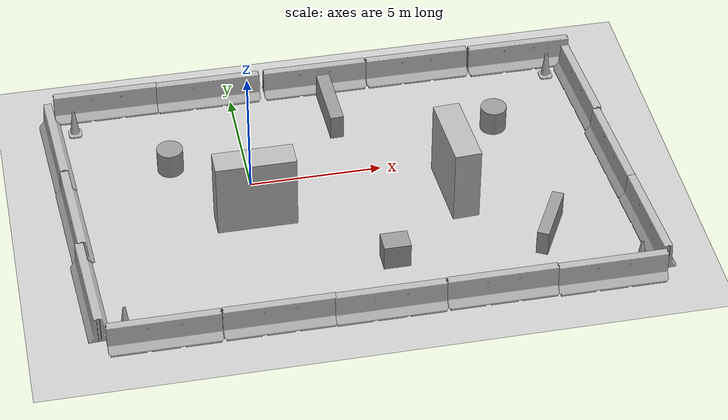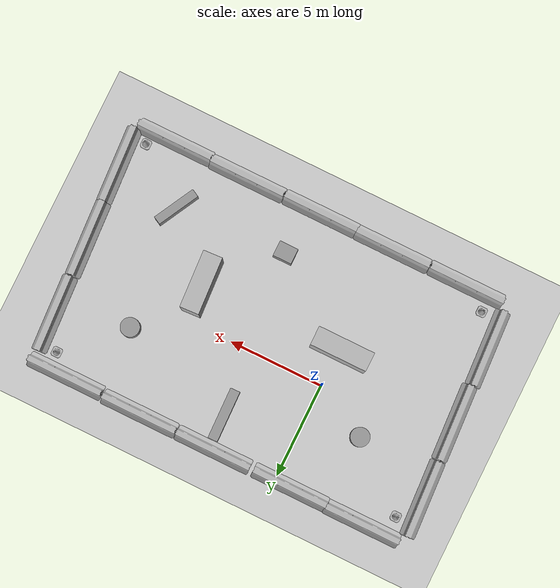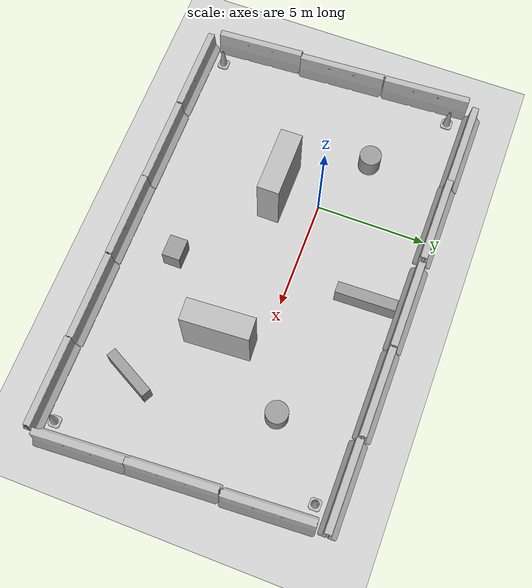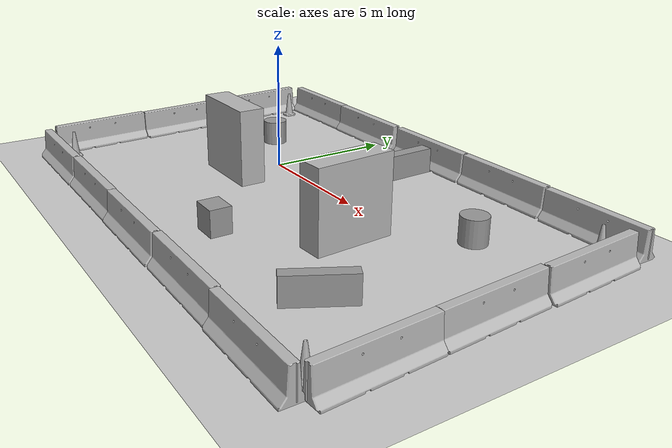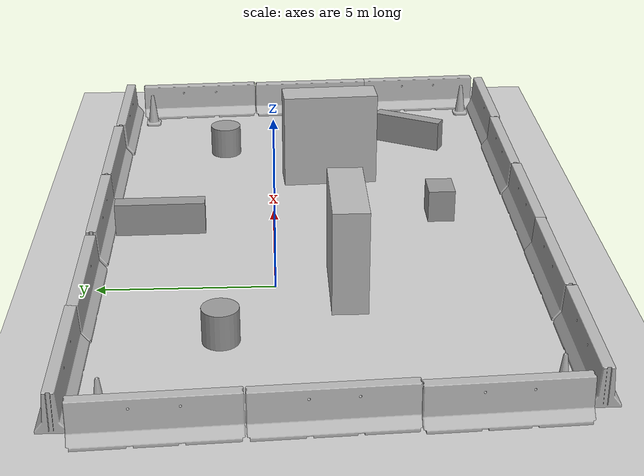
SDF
<sdf version="1.6">
 <world name="default">
  <light name="sun" type="directional">
   <pose>0 0 10 0 -0 0</pose>
   <diffuse>0.8 0.8 0.8 1</diffuse>
   <specular>0.2 0.2 0.2 1</specular>
   <attenuation>
    <range>1000</range>
    <constant>0.9</constant>
    <linear>0.01</linear>
    <quadratic>0.001</quadratic>
   </attenuation>
   <direction>-0.5 0.1 -0.9</direction>
  </light>
  <model name="ground_plane">
   <static>1</static>
   <link name="link">
    <collision name="collision">
     <geometry><plane><normal>0 0 1</normal><size>100 100</size></plane></geometry>
     <surface>
      <contact><collide_bitmask>65535</collide_bitmask></contact>
      <friction><ode><mu>100</mu><mu2>50</mu2></ode></friction>
     </surface>
    </collision>
    <visual name="visual">
     <cast_shadows>0</cast_shadows>
     <geometry><plane><normal>0 0 1</normal><size>100 100</size></plane></geometry>
     <material>
      <script><uri>file://media/materials/scripts/gazebo.material</uri><name>Gazebo/Grey</name></script>
     </material>
    </visual>
   </link>
  </model>
  <gravity>0 0 -9.8</gravity>
  <magnetic_field>6e-06 2.3e-05 -4.2e-05</magnetic_field>
  <atmosphere type="adiabatic"/>
  <physics name="default_physics" default="0" type="ode">
   <max_step_size>0.001</max_step_size>
   <real_time_factor>1</real_time_factor>
   <real_time_update_rate>1000</real_time_update_rate>
  </physics>
  <scene><ambient>0.4 0.4 0.4 1</ambient><background>0.7 0.7 0.7 1</background><shadows>1</shadows></scene>
  <audio><device>default</device></audio>
  <spherical_coordinates>
   <surface_model>EARTH_WGS84</surface_model>
   <latitude_deg>0</latitude_deg>
   <longitude_deg>0</longitude_deg>
   <elevation>0</elevation>
   <heading_deg>0</heading_deg>
  </spherical_coordinates>
  <model name="brick_box_3x1x3">
   <static>1</static>
   <link name="chassis">
    <pose>0 0 1.5 0 -0 0</pose>
    <collision name="collision"><geometry><box><size>3 1 3</size></box></geometry></collision>
    <visual name="visual">
     <geometry><mesh><uri>model://brick_box_3x1x3/meshes/simple_box.dae</uri><scale>3 1 3</scale></mesh></geometry>
     <material>
      <script>
       <uri>model://brick_box_3x1x3/materials/scripts</uri>
       <uri>model://brick_box_3x1x3/materials/textures</uri>
       <name>BrickBox/Diffuse</name>
      </script>
     </material>
    </visual>
   </link>
   <pose>-0.123615 -1.97422 0 0 -0 0</pose>
  </model>
  <model name="jersey_barrier">
   <static>1</static>
   <link name="link">
    <visual name="visual">
     <geometry><mesh><uri>model://jersey_barrier/meshes/jersey_barrier.dae</uri></mesh></geometry>
    </visual>
    <collision name="upright">
     <pose>0 0 0.5715 0 -0 0</pose>
     <geometry><box><size>4.06542 0.3063 1.143</size></box></geometry>
    </collision>
    <collision name="base">
     <pose>0 0 0.032258 0 -0 0</pose>
     <geometry><box><size>4.06542 0.8107 0.064516</size></box></geometry>
    </collision>
    <collision name="base2">
     <pose>0 0 0.1 0 -0 0</pose>
     <geometry><box><size>4.06542 0.65 0.1</size></box></geometry>
    </collision>
    <collision name="base3">
     <pose>0 0 0.2 0 -0 0</pose>
     <geometry><box><size>4.06542 0.5 0.1</size></box></geometry>
    </collision>
    <collision name="left-angle">
     <pose>0 -0.224 0.2401 0.9 -0 0</pose>
     <geometry><box><size>4.06542 0.5 0.064516</size></box></geometry>
    </collision>
    <collision name="right-angle">
     <pose>0 0.224 0.2401 -0.9 0 0</pose>
     <geometry><box><size>4.06542 0.5 0.064516</size></box></geometry>
    </collision>
   </link>
   <pose>-0.207095 -7.71472 0.004718 0 -0 0</pose>
  </model>
  <model name="jersey_barrier_clone">
   <static>1</static>
   <link name="link">
    <visual name="visual">
     <geometry><mesh><uri>model://jersey_barrier/meshes/jersey_barrier.dae</uri></mesh></geometry>
    </visual>
    <collision name="upright">
     <pose>0 0 0.5715 0 -0 0</pose>
     <geometry><box><size>4.06542 0.3063 1.143</size></box></geometry>
    </collision>
    <collision name="base">
     <pose>0 0 0.032258 0 -0 0</pose>
     <geometry><box><size>4.06542 0.8107 0.064516</size></box></geometry>
    </collision>
    <collision name="base2">
     <pose>0 0 0.1 0 -0 0</pose>
     <geometry><box><size>4.06542 0.65 0.1</size></box></geometry>
    </collision>
    <collision name="base3">
     <pose>0 0 0.2 0 -0 0</pose>
     <geometry><box><size>4.06542 0.5 0.1</size></box></geometry>
    </collision>
    <collision name="left-angle">
     <pose>0 -0.224 0.2401 0.9 -0 0</pose>
     <geometry><box><size>4.06542 0.5 0.064516</size></box></geometry>
    </collision>
    <collision name="right-angle">
     <pose>0 0.224 0.2401 -0.9 0 0</pose>
     <geometry><box><size>4.06542 0.5 0.064516</size></box></geometry>
    </collision>
   </link>
   <pose>3.77569 -7.73305 0 0 -0 0</pose>
  </model>
  <model name="jersey_barrier_clone_clone">
   <static>1</static>
   <link name="link">
    <visual name="visual">
     <geometry><mesh><uri>model://jersey_barrier/meshes/jersey_barrier.dae</uri></mesh></geometry>
    </visual>
    <collision name="upright">
     <pose>0 0 0.5715 0 -0 0</pose>
     <geometry><box><size>4.06542 0.3063 1.143</size></box></geometry>
    </collision>
    <collision name="base">
     <pose>0 0 0.032258 0 -0 0</pose>
     <geometry><box><size>4.06542 0.8107 0.064516</size></box></geometry>
    </collision>
    <collision name="base2">
     <pose>0 0 0.1 0 -0 0</pose>
     <geometry><box><size>4.06542 0.65 0.1</size></box></geometry>
    </collision>
    <collision name="base3">
     <pose>0 0 0.2 0 -0 0</pose>
     <geometry><box><size>4.06542 0.5 0.1</size></box></geometry>
    </collision>
    <collision name="left-angle">
     <pose>0 -0.224 0.2401 0.9 -0 0</pose>
     <geometry><box><size>4.06542 0.5 0.064516</size></box></geometry>
    </collision>
    <collision name="right-angle">
     <pose>0 0.224 0.2401 -0.9 0 0</pose>
     <geometry><box><size>4.06542 0.5 0.064516</size></box></geometry>
    </collision>
   </link>
   <pose>7.86067 -7.70894 0 0 -0 0</pose>
  </model>
  <model name="jersey_barrier_clone_clone_clone">
   <static>1</static>
   <link name="link">
    <visual name="visual">
     <geometry><mesh><uri>model://jersey_barrier/meshes/jersey_barrier.dae</uri></mesh></geometry>
    </visual>
    <collision name="upright">
     <pose>0 0 0.5715 0 -0 0</pose>
     <geometry><box><size>4.06542 0.3063 1.143</size></box></geometry>
    </collision>
    <collision name="base">
     <pose>0 0 0.032258 0 -0 0</pose>
     <geometry><box><size>4.06542 0.8107 0.064516</size></box></geometry>
    </collision>
    <collision name="base2">
     <pose>0 0 0.1 0 -0 0</pose>
     <geometry><box><size>4.06542 0.65 0.1</size></box></geometry>
    </collision>
    <collision name="base3">
     <pose>0 0 0.2 0 -0 0</pose>
     <geometry><box><size>4.06542 0.5 0.1</size></box></geometry>
    </collision>
    <collision name="left-angle">
     <pose>0 -0.224 0.2401 0.9 -0 0</pose>
     <geometry><box><size>4.06542 0.5 0.064516</size></box></geometry>
    </collision>
    <collision name="right-angle">
     <pose>0 0.224 0.2401 -0.9 0 0</pose>
     <geometry><box><size>4.06542 0.5 0.064516</size></box></geometry>
    </collision>
   </link>
   <pose>11.9086 -7.75755 0 0 -0 0</pose>
  </model>
  <model name="jersey_barrier_clone_clone_clone_clone">
   <static>1</static>
   <link name="link">
    <visual name="visual">
     <geometry><mesh><uri>model://jersey_barrier/meshes/jersey_barrier.dae</uri></mesh></geometry>
    </visual>
    <collision name="upright">
     <pose>0 0 0.5715 0 -0 0</pose>
     <geometry><box><size>4.06542 0.3063 1.143</size></box></geometry>
    </collision>
    <collision name="base">
     <pose>0 0 0.032258 0 -0 0</pose>
     <geometry><box><size>4.06542 0.8107 0.064516</size></box></geometry>
    </collision>
    <collision name="base2">
     <pose>0 0 0.1 0 -0 0</pose>
     <geometry><box><size>4.06542 0.65 0.1</size></box></geometry>
    </collision>
    <collision name="base3">
     <pose>0 0 0.2 0 -0 0</pose>
     <geometry><box><size>4.06542 0.5 0.1</size></box></geometry>
    </collision>
    <collision name="left-angle">
     <pose>0 -0.224 0.2401 0.9 -0 0</pose>
     <geometry><box><size>4.06542 0.5 0.064516</size></box></geometry>
    </collision>
    <collision name="right-angle">
     <pose>0 0.224 0.2401 -0.9 0 0</pose>
     <geometry><box><size>4.06542 0.5 0.064516</size></box></geometry>
    </collision>
   </link>
   <pose>13.9289 -5.46955 0 0 0 -1.51331</pose>
  </model>
  <model name="jersey_barrier_clone_clone_clone_clone_clone">
   <static>1</static>
   <link name="link">
    <visual name="visual">
     <geometry><mesh><uri>model://jersey_barrier/meshes/jersey_barrier.dae</uri></mesh></geometry>
    </visual>
    <collision name="upright">
     <pose>0 0 0.5715 0 -0 0</pose>
     <geometry><box><size>4.06542 0.3063 1.143</size></box></geometry>
    </collision>
    <collision name="base">
     <pose>0 0 0.032258 0 -0 0</pose>
     <geometry><box><size>4.06542 0.8107 0.064516</size></box></geometry>
    </collision>
    <collision name="base2">
     <pose>0 0 0.1 0 -0 0</pose>
     <geometry><box><size>4.06542 0.65 0.1</size></box></geometry>
    </collision>
    <collision name="base3">
     <pose>0 0 0.2 0 -0 0</pose>
     <geometry><box><size>4.06542 0.5 0.1</size></box></geometry>
    </collision>
    <collision name="left-angle">
     <pose>0 -0.224 0.2401 0.9 -0 0</pose>
     <geometry><box><size>4.06542 0.5 0.064516</size></box></geometry>
    </collision>
    <collision name="right-angle">
     <pose>0 0.224 0.2401 -0.9 0 0</pose>
     <geometry><box><size>4.06542 0.5 0.064516</size></box></geometry>
    </collision>
   </link>
   <pose>13.6912 -1.46129 0 0 0 -1.51331</pose>
  </model>
  <model name="jersey_barrier_clone_clone_clone_clone_clone_clone">
   <static>1</static>
   <link name="link">
    <visual name="visual">
     <geometry><mesh><uri>model://jersey_barrier/meshes/jersey_barrier.dae</uri></mesh></geometry>
    </visual>
    <collision name="upright">
     <pose>0 0 0.5715 0 -0 0</pose>
     <geometry><box><size>4.06542 0.3063 1.143</size></box></geometry>
    </collision>
    <collision name="base">
     <pose>0 0 0.032258 0 -0 0</pose>
     <geometry><box><size>4.06542 0.8107 0.064516</size></box></geometry>
    </collision>
    <collision name="base2">
     <pose>0 0 0.1 0 -0 0</pose>
     <geometry><box><size>4.06542 0.65 0.1</size></box></geometry>
    </collision>
    <collision name="base3">
     <pose>0 0 0.2 0 -0 0</pose>
     <geometry><box><size>4.06542 0.5 0.1</size></box></geometry>
    </collision>
    <collision name="left-angle">
     <pose>0 -0.224 0.2401 0.9 -0 0</pose>
     <geometry><box><size>4.06542 0.5 0.064516</size></box></geometry>
    </collision>
    <collision name="right-angle">
     <pose>0 0.224 0.2401 -0.9 0 0</pose>
     <geometry><box><size>4.06542 0.5 0.064516</size></box></geometry>
    </collision>
   </link>
   <pose>13.524 2.63307 0 0 0 -1.51331</pose>
  </model>
  <model name="jersey_barrier_clone_clone_clone_clone_0">
   <static>1</static>
   <link name="link">
    <visual name="visual">
     <geometry><mesh><uri>model://jersey_barrier/meshes/jersey_barrier.dae</uri></mesh></geometry>
    </visual>
    <collision name="upright">
     <pose>0 0 0.5715 0 -0 0</pose>
     <geometry><box><size>4.06542 0.3063 1.143</size></box></geometry>
    </collision>
    <collision name="base">
     <pose>0 0 0.032258 0 -0 0</pose>
     <geometry><box><size>4.06542 0.8107 0.064516</size></box></geometry>
    </collision>
    <collision name="base2">
     <pose>0 0 0.1 0 -0 0</pose>
     <geometry><box><size>4.06542 0.65 0.1</size></box></geometry>
    </collision>
    <collision name="base3">
     <pose>0 0 0.2 0 -0 0</pose>
     <geometry><box><size>4.06542 0.5 0.1</size></box></geometry>
    </collision>
    <collision name="left-angle">
     <pose>0 -0.224 0.2401 0.9 -0 0</pose>
     <geometry><box><size>4.06542 0.5 0.064516</size></box></geometry>
    </collision>
    <collision name="right-angle">
     <pose>0 0.224 0.2401 -0.9 0 0</pose>
     <geometry><box><size>4.06542 0.5 0.064516</size></box></geometry>
    </collision>
   </link>
   <pose>11.6318 5.16035 0 0 -0 0</pose>
  </model>
  <model name="jersey_barrier_clone_clone_clone_clone_0_clone">
   <static>1</static>
   <link name="link">
    <visual name="visual">
     <geometry><mesh><uri>model://jersey_barrier/meshes/jersey_barrier.dae</uri></mesh></geometry>
    </visual>
    <collision name="upright">
     <pose>0 0 0.5715 0 -0 0</pose>
     <geometry><box><size>4.06542 0.3063 1.143</size></box></geometry>
    </collision>
    <collision name="base">
     <pose>0 0 0.032258 0 -0 0</pose>
     <geometry><box><size>4.06542 0.8107 0.064516</size></box></geometry>
    </collision>
    <collision name="base2">
     <pose>0 0 0.1 0 -0 0</pose>
     <geometry><box><size>4.06542 0.65 0.1</size></box></geometry>
    </collision>
    <collision name="base3">
     <pose>0 0 0.2 0 -0 0</pose>
     <geometry><box><size>4.06542 0.5 0.1</size></box></geometry>
    </collision>
    <collision name="left-angle">
     <pose>0 -0.224 0.2401 0.9 -0 0</pose>
     <geometry><box><size>4.06542 0.5 0.064516</size></box></geometry>
    </collision>
    <collision name="right-angle">
     <pose>0 0.224 0.2401 -0.9 0 0</pose>
     <geometry><box><size>4.06542 0.5 0.064516</size></box></geometry>
    </collision>
   </link>
   <pose>7.49854 5.21936 0 0 -0 0</pose>
  </model>
  <model name="jersey_barrier_clone_clone_clone_clone_0_clone_clone">
   <static>1</static>
   <link name="link">
    <visual name="visual">
     <geometry><mesh><uri>model://jersey_barrier/meshes/jersey_barrier.dae</uri></mesh></geometry>
    </visual>
    <collision name="upright">
     <pose>0 0 0.5715 0 -0 0</pose>
     <geometry><box><size>4.06542 0.3063 1.143</size></box></geometry>
    </collision>
    <collision name="base">
     <pose>0 0 0.032258 0 -0 0</pose>
     <geometry><box><size>4.06542 0.8107 0.064516</size></box></geometry>
    </collision>
    <collision name="base2">
     <pose>0 0 0.1 0 -0 0</pose>
     <geometry><box><size>4.06542 0.65 0.1</size></box></geometry>
    </collision>
    <collision name="base3">
     <pose>0 0 0.2 0 -0 0</pose>
     <geometry><box><size>4.06542 0.5 0.1</size></box></geometry>
    </collision>
    <collision name="left-angle">
     <pose>0 -0.224 0.2401 0.9 -0 0</pose>
     <geometry><box><size>4.06542 0.5 0.064516</size></box></geometry>
    </collision>
    <collision name="right-angle">
     <pose>0 0.224 0.2401 -0.9 0 0</pose>
     <geometry><box><size>4.06542 0.5 0.064516</size></box></geometry>
    </collision>
   </link>
   <pose>3.40367 5.22414 0 0 -0 0</pose>
  </model>
  <model name="jersey_barrier_clone_clone_clone_clone_0_clone_clone_clone">
   <static>1</static>
   <link name="link">
    <visual name="visual">
     <geometry><mesh><uri>model://jersey_barrier/meshes/jersey_barrier.dae</uri></mesh></geometry>
    </visual>
    <collision name="upright">
     <pose>0 0 0.5715 0 -0 0</pose>
     <geometry><box><size>4.06542 0.3063 1.143</size></box></geometry>
    </collision>
    <collision name="base">
     <pose>0 0 0.032258 0 -0 0</pose>
     <geometry><box><size>4.06542 0.8107 0.064516</size></box></geometry>
    </collision>
    <collision name="base2">
     <pose>0 0 0.1 0 -0 0</pose>
     <geometry><box><size>4.06542 0.65 0.1</size></box></geometry>
    </collision>
    <collision name="base3">
     <pose>0 0 0.2 0 -0 0</pose>
     <geometry><box><size>4.06542 0.5 0.1</size></box></geometry>
    </collision>
    <collision name="left-angle">
     <pose>0 -0.224 0.2401 0.9 -0 0</pose>
     <geometry><box><size>4.06542 0.5 0.064516</size></box></geometry>
    </collision>
    <collision name="right-angle">
     <pose>0 0.224 0.2401 -0.9 0 0</pose>
     <geometry><box><size>4.06542 0.5 0.064516</size></box></geometry>
    </collision>
   </link>
   <pose>-0.844565 5.21813 0 0 -0 0</pose>
  </model>
  <model name="jersey_barrier_clone_clone_clone_clone_0_clone_clone_clone_clone">
   <static>1</static>
   <link name="link">
    <visual name="visual">
     <geometry><mesh><uri>model://jersey_barrier/meshes/jersey_barrier.dae</uri></mesh></geometry>
    </visual>
    <collision name="upright">
     <pose>0 0 0.5715 0 -0 0</pose>
     <geometry><box><size>4.06542 0.3063 1.143</size></box></geometry>
    </collision>
    <collision name="base">
     <pose>0 0 0.032258 0 -0 0</pose>
     <geometry><box><size>4.06542 0.8107 0.064516</size></box></geometry>
    </collision>
    <collision name="base2">
     <pose>0 0 0.1 0 -0 0</pose>
     <geometry><box><size>4.06542 0.65 0.1</size></box></geometry>
    </collision>
    <collision name="base3">
     <pose>0 0 0.2 0 -0 0</pose>
     <geometry><box><size>4.06542 0.5 0.1</size></box></geometry>
    </collision>
    <collision name="left-angle">
     <pose>0 -0.224 0.2401 0.9 -0 0</pose>
     <geometry><box><size>4.06542 0.5 0.064516</size></box></geometry>
    </collision>
    <collision name="right-angle">
     <pose>0 0.224 0.2401 -0.9 0 0</pose>
     <geometry><box><size>4.06542 0.5 0.064516</size></box></geometry>
    </collision>
   </link>
   <pose>-4.82973 5.25139 0 0 -0 0</pose>
  </model>
  <model name="jersey_barrier_clone_0">
   <static>1</static>
   <link name="link">
    <visual name="visual">
     <geometry><mesh><uri>model://jersey_barrier/meshes/jersey_barrier.dae</uri></mesh></geometry>
    </visual>
    <collision name="upright">
     <pose>0 0 0.5715 0 -0 0</pose>
     <geometry><box><size>4.06542 0.3063 1.143</size></box></geometry>
    </collision>
    <collision name="base">
     <pose>0 0 0.032258 0 -0 0</pose>
     <geometry><box><size>4.06542 0.8107 0.064516</size></box></geometry>
    </collision>
    <collision name="base2">
     <pose>0 0 0.1 0 -0 0</pose>
     <geometry><box><size>4.06542 0.65 0.1</size></box></geometry>
    </collision>
    <collision name="base3">
     <pose>0 0 0.2 0 -0 0</pose>
     <geometry><box><size>4.06542 0.5 0.1</size></box></geometry>
    </collision>
    <collision name="left-angle">
     <pose>0 -0.224 0.2401 0.9 -0 0</pose>
     <geometry><box><size>4.06542 0.5 0.064516</size></box></geometry>
    </collision>
    <collision name="right-angle">
     <pose>0 0.224 0.2401 -0.9 0 0</pose>
     <geometry><box><size>4.06542 0.5 0.064516</size></box></geometry>
    </collision>
   </link>
   <pose>-4.29793 -7.72739 0 0 -0 0</pose>
  </model>
  <model name="jersey_barrier_clone_clone_clone_clone_clone_clone_clone">
   <static>1</static>
   <link name="link">
    <visual name="visual">
     <geometry><mesh><uri>model://jersey_barrier/meshes/jersey_barrier.dae</uri></mesh></geometry>
    </visual>
    <collision name="upright">
     <pose>0 0 0.5715 0 -0 0</pose>
     <geometry><box><size>4.06542 0.3063 1.143</size></box></geometry>
    </collision>
    <collision name="base">
     <pose>0 0 0.032258 0 -0 0</pose>
     <geometry><box><size>4.06542 0.8107 0.064516</size></box></geometry>
    </collision>
    <collision name="base2">
     <pose>0 0 0.1 0 -0 0</pose>
     <geometry><box><size>4.06542 0.65 0.1</size></box></geometry>
    </collision>
    <collision name="base3">
     <pose>0 0 0.2 0 -0 0</pose>
     <geometry><box><size>4.06542 0.5 0.1</size></box></geometry>
    </collision>
    <collision name="left-angle">
     <pose>0 -0.224 0.2401 0.9 -0 0</pose>
     <geometry><box><size>4.06542 0.5 0.064516</size></box></geometry>
    </collision>
    <collision name="right-angle">
     <pose>0 0.224 0.2401 -0.9 0 0</pose>
     <geometry><box><size>4.06542 0.5 0.064516</size></box></geometry>
    </collision>
   </link>
   <pose>-7.0024 2.84147 0 0 0 -1.51331</pose>
  </model>
  <model name="jersey_barrier_clone_clone_clone_clone_clone_clone_clone_clone">
   <static>1</static>
   <link name="link">
    <visual name="visual">
     <geometry><mesh><uri>model://jersey_barrier/meshes/jersey_barrier.dae</uri></mesh></geometry>
    </visual>
    <collision name="upright">
     <pose>0 0 0.5715 0 -0 0</pose>
     <geometry><box><size>4.06542 0.3063 1.143</size></box></geometry>
    </collision>
    <collision name="base">
     <pose>0 0 0.032258 0 -0 0</pose>
     <geometry><box><size>4.06542 0.8107 0.064516</size></box></geometry>
    </collision>
    <collision name="base2">
     <pose>0 0 0.1 0 -0 0</pose>
     <geometry><box><size>4.06542 0.65 0.1</size></box></geometry>
    </collision>
    <collision name="base3">
     <pose>0 0 0.2 0 -0 0</pose>
     <geometry><box><size>4.06542 0.5 0.1</size></box></geometry>
    </collision>
    <collision name="left-angle">
     <pose>0 -0.224 0.2401 0.9 -0 0</pose>
     <geometry><box><size>4.06542 0.5 0.064516</size></box></geometry>
    </collision>
    <collision name="right-angle">
     <pose>0 0.224 0.2401 -0.9 0 0</pose>
     <geometry><box><size>4.06542 0.5 0.064516</size></box></geometry>
    </collision>
   </link>
   <pose>-6.78309 -1.2553 0 0 0 -1.51331</pose>
  </model>
  <model name="jersey_barrier_clone_clone_clone_clone_clone_clone_clone_clone_clone">
   <static>1</static>
   <link name="link">
    <visual name="visual">
     <geometry><mesh><uri>model://jersey_barrier/meshes/jersey_barrier.dae</uri></mesh></geometry>
    </visual>
    <collision name="upright">
     <pose>0 0 0.5715 0 -0 0</pose>
     <geometry><box><size>4.06542 0.3063 1.143</size></box></geometry>
    </collision>
    <collision name="base">
     <pose>0 0 0.032258 0 -0 0</pose>
     <geometry><box><size>4.06542 0.8107 0.064516</size></box></geometry>
    </collision>
    <collision name="base2">
     <pose>0 0 0.1 0 -0 0</pose>
     <geometry><box><size>4.06542 0.65 0.1</size></box></geometry>
    </collision>
    <collision name="base3">
     <pose>0 0 0.2 0 -0 0</pose>
     <geometry><box><size>4.06542 0.5 0.1</size></box></geometry>
    </collision>
    <collision name="left-angle">
     <pose>0 -0.224 0.2401 0.9 -0 0</pose>
     <geometry><box><size>4.06542 0.5 0.064516</size></box></geometry>
    </collision>
    <collision name="right-angle">
     <pose>0 0.224 0.2401 -0.9 0 0</pose>
     <geometry><box><size>4.06542 0.5 0.064516</size></box></geometry>
    </collision>
   </link>
   <pose>-6.6623 -5.31482 0 0 0 -1.51331</pose>
  </model>
  <model name="Construction Cone">
   <link name="link">
    <collision name="collision">
     <geometry>
      <mesh><scale>10 10 10</scale><uri>model://construction_cone/meshes/construction_cone.dae</uri></mesh>
     </geometry>
    </collision>
    <visual name="visual">
     <geometry>
      <mesh><scale>10 10 10</scale><uri>model://construction_cone/meshes/construction_cone.dae</uri></mesh>
     </geometry>
    </visual>
    <inertial>
     <inertia><ixx>1</ixx><ixy>0</ixy><ixz>0</ixz><iyy>1</iyy><iyz>0</iyz><izz>1</izz></inertia>
     <mass>1</mass>
    </inertial>
   </link>
   <pose>13.21 -7.02676 -9e-06 1e-06 -1e-06 0</pose>
  </model>
  <model name="Construction Cone_clone">
   <link name="link">
    <collision name="collision">
     <geometry>
      <mesh><scale>10 10 10</scale><uri>model://construction_cone/meshes/construction_cone.dae</uri></mesh>
     </geometry>
    </collision>
    <visual name="visual">
     <geometry>
      <mesh><scale>10 10 10</scale><uri>model://construction_cone/meshes/construction_cone.dae</uri></mesh>
     </geometry>
    </visual>
    <inertial>
     <inertia><ixx>1</ixx><ixy>0</ixy><ixz>0</ixz><iyy>1</iyy><iyz>0</iyz><izz>1</izz></inertia>
     <mass>1</mass>
    </inertial>
   </link>
   <pose>12.5813 4.29943 -0 0 -0 0</pose>
  </model>
  <model name="Construction Cone_clone_clone">
   <link name="link">
    <collision name="collision">
     <geometry>
      <mesh><scale>10 10 10</scale><uri>model://construction_cone/meshes/construction_cone.dae</uri></mesh>
     </geometry>
    </collision>
    <visual name="visual">
     <geometry>
      <mesh><scale>10 10 10</scale><uri>model://construction_cone/meshes/construction_cone.dae</uri></mesh>
     </geometry>
    </visual>
    <inertial>
     <inertia><ixx>1</ixx><ixy>0</ixy><ixz>0</ixz><iyy>1</iyy><iyz>0</iyz><izz>1</izz></inertia>
     <mass>1</mass>
    </inertial>
   </link>
   <pose>-5.58502 -6.85678 -1e-05 -1e-06 0 0</pose>
  </model>
  <model name="Construction Cone_clone_clone_clone">
   <link name="link">
    <collision name="collision">
     <geometry>
      <mesh><scale>10 10 10</scale><uri>model://construction_cone/meshes/construction_cone.dae</uri></mesh>
     </geometry>
    </collision>
    <visual name="visual">
     <geometry>
      <mesh><scale>10 10 10</scale><uri>model://construction_cone/meshes/construction_cone.dae</uri></mesh>
     </geometry>
    </visual>
    <inertial>
     <inertia><ixx>1</ixx><ixy>0</ixy><ixz>0</ixz><iyy>1</iyy><iyz>0</iyz><izz>1</izz></inertia>
     <mass>1</mass>
    </inertial>
   </link>
   <pose>-6.19284 4.21331 -1e-05 -1e-06 0 0</pose>
  </model>
  <model name="brick_box_3x1x3_clone">
   <static>1</static>
   <link name="chassis">
    <pose>0 0 1.5 0 -0 0</pose>
    <collision name="collision"><geometry><box><size>3 1 3</size></box></geometry></collision>
    <visual name="visual">
     <geometry><mesh><uri>model://brick_box_3x1x3/meshes/simple_box.dae</uri><scale>3 1 3</scale></mesh></geometry>
     <material>
      <script>
       <uri>model://brick_box_3x1x3/materials/scripts</uri>
       <uri>model://brick_box_3x1x3/materials/textures</uri>
       <name>BrickBox/Diffuse</name>
      </script>
     </material>
    </visual>
   </link>
   <pose>7.47853 -1.85244 0 0 -0 1.6285</pose>
  </model>
  <model name="unit_box">
   <pose>4.49368 -5.14193 0.499995 -0 -1e-05 -9e-06</pose>
   <link name="link">
    <inertial>
     <mass>1</mass>
     <inertia>
      <ixx>0.166667</ixx>
      <ixy>0</ixy>
      <ixz>0</ixz>
      <iyy>0.166667</iyy>
      <iyz>0</iyz>
      <izz>0.166667</izz>
     </inertia>
    </inertial>
    <collision name="collision"><geometry><box><size>1 0.815063 1</size></box></geometry></collision>
    <visual name="visual">
     <geometry><box><size>1 0.815063 1</size></box></geometry>
     <material>
      <script><name>Gazebo/Grey</name><uri>file://media/materials/scripts/gazebo.material</uri></script>
     </material>
    </visual>
   </link>
  </model>
  <model name="unit_cylinder">
   <pose>9.77342 1.59254 0.499992 -3e-06 2e-06 0</pose>
   <link name="link">
    <inertial>
     <mass>1</mass>
     <inertia><ixx>0.145833</ixx><ixy>0</ixy><ixz>0</ixz><iyy>0.145833</iyy><iyz>0</iyz><izz>0.125</izz></inertia>
    </inertial>
    <collision name="collision">
     <geometry><cylinder><radius>0.5</radius><length>1</length></cylinder></geometry>
    </collision>
    <visual name="visual">
     <geometry><cylinder><radius>0.5</radius><length>1</length></cylinder></geometry>
     <material>
      <script><name>Gazebo/Grey</name><uri>file://media/materials/scripts/gazebo.material</uri></script>
     </material>
    </visual>
   </link>
  </model>
  <model name="unit_box_0">
   <pose>3.68473 3.43684 0.499901 0 -7.4e-05 1.59597</pose>
   <link name="link">
    <inertial>
     <mass>1</mass>
     <inertia>
      <ixx>0.166667</ixx>
      <ixy>0</ixy>
      <ixz>0</ixz>
      <iyy>0.166667</iyy>
      <iyz>0</iyz>
      <izz>0.166667</izz>
     </inertia>
    </inertial>
    <collision name="collision"><geometry><box><size>2.70492 0.513315 1</size></box></geometry></collision>
    <visual name="visual">
     <geometry><box><size>2.70492 0.513315 1</size></box></geometry>
     <material>
      <script><name>Gazebo/Grey</name><uri>file://media/materials/scripts/gazebo.material</uri></script>
     </material>
    </visual>
   </link>
  </model>
  <model name="unit_cylinder_0">
   <pose>-2.84627 1.45905 0.499998 3e-06 -3e-06 0</pose>
   <link name="link">
    <inertial>
     <mass>1</mass>
     <inertia><ixx>0.145833</ixx><ixy>0</ixy><ixz>0</ixz><iyy>0.145833</iyy><iyz>0</iyz><izz>0.125</izz></inertia>
    </inertial>
    <collision name="collision">
     <geometry><cylinder><radius>0.5</radius><length>1</length></cylinder></geometry>
    </collision>
    <visual name="visual">
     <geometry><cylinder><radius>0.5</radius><length>1</length></cylinder></geometry>
     <material>
      <script><name>Gazebo/Grey</name><uri>file://media/materials/scripts/gazebo.material</uri></script>
     </material>
    </visual>
   </link>
  </model>
  <model name="unit_box_1">
   <pose>10.3753 -4.7883 0.499997 1e-06 2e-06 1.08149</pose>
   <link name="link">
    <inertial>
     <mass>1</mass>
     <inertia>
      <ixx>0.166667</ixx>
      <ixy>0</ixy>
      <ixz>0</ixz>
      <iyy>0.166667</iyy>
      <iyz>0</iyz>
      <izz>0.166667</izz>
     </inertia>
    </inertial>
    <collision name="collision"><geometry><box><size>2.35987 0.445552 1</size></box></geometry></collision>
    <visual name="visual">
     <geometry><box><size>2.35987 0.445552 1</size></box></geometry>
     <material>
      <script><name>Gazebo/Grey</name><uri>file://media/materials/scripts/gazebo.material</uri></script>
     </material>
    </visual>
   </link>
  </model>
 </world>
</sdf>
